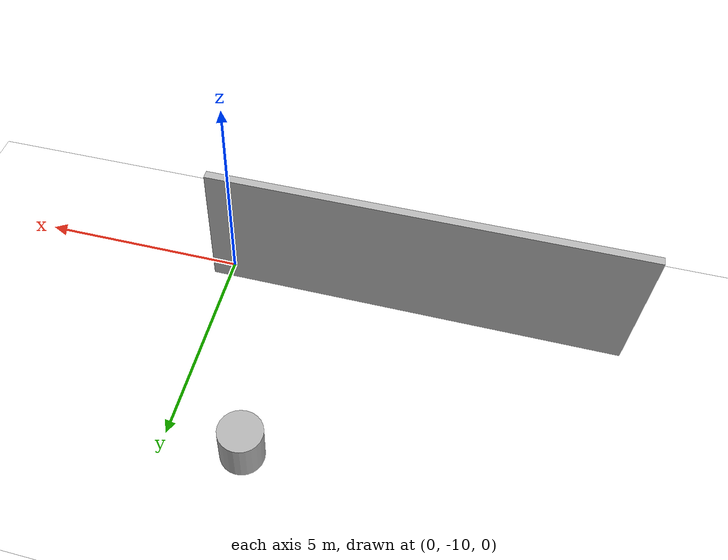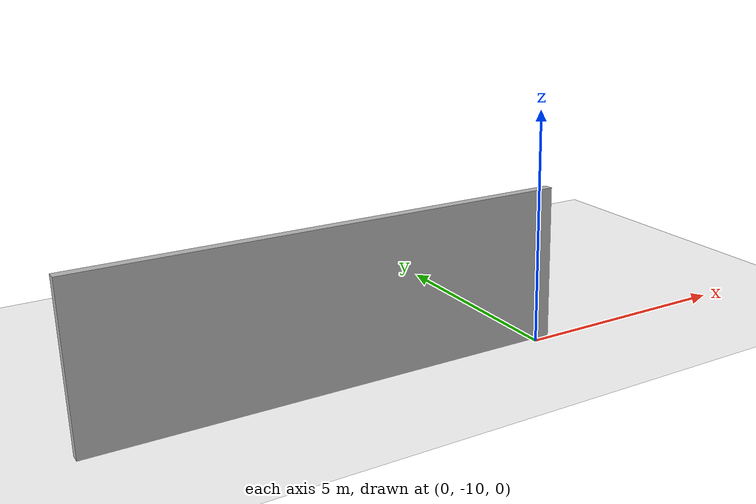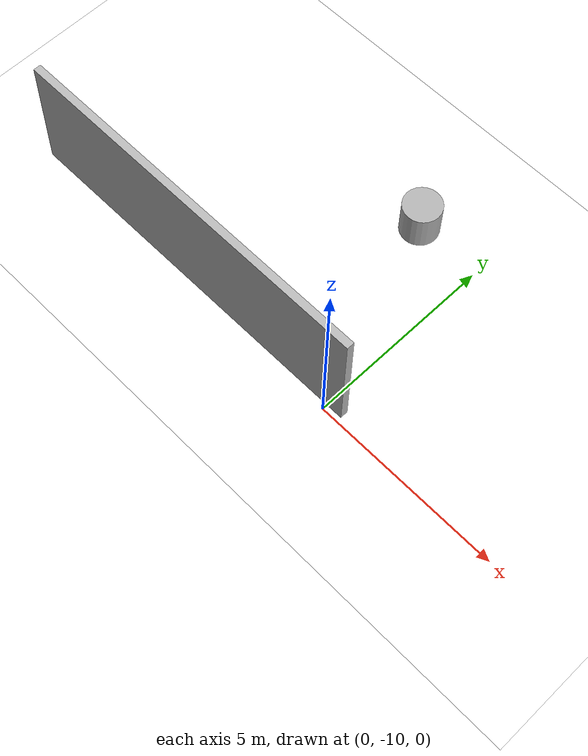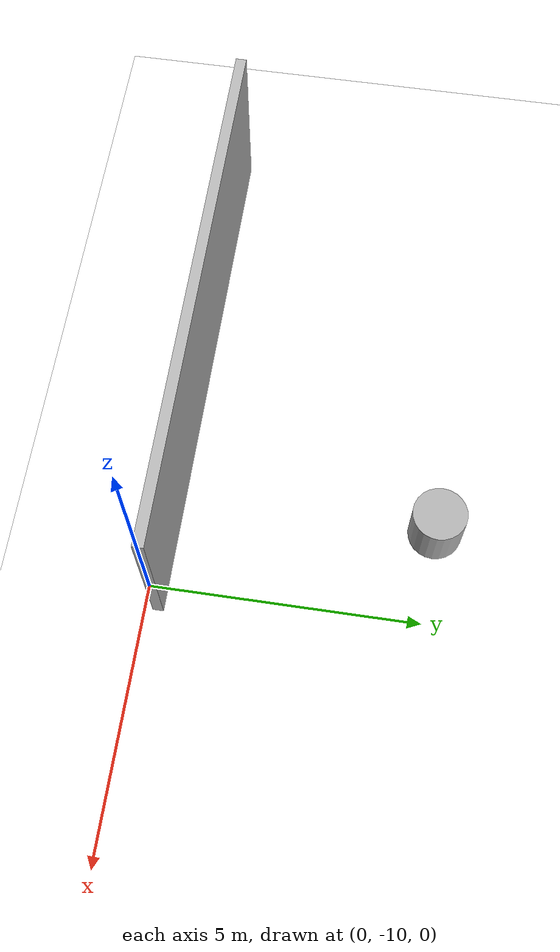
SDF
<sdf version="1.10">
 <world name="empty">
  <model name="ground_plane">
   <static>true</static>
   <link name="link">
    <collision name="collision">
     <geometry><plane><normal>0 0 1</normal><size>100 100</size></plane></geometry>
    </collision>
    <visual name="visual">
     <geometry><plane><normal>0 0 1</normal><size>20 20</size></plane></geometry>
     <material>
      <ambient>1 1 1 1</ambient>
      <diffuse>1 1 1 1</diffuse>
      <pbr>
       <metal>
        <albedo_map>file:///home/kiranchand/Downloads/project_2026/grass.jpg</albedo_map>
        <roughness>0.9</roughness>
        <metalness>0.0</metalness>
       </metal>
      </pbr>
     </material>
    </visual>
    <inertial>
     <mass>1</mass>
     <inertia><ixx>1</ixx><ixy>0</ixy><ixz>0</ixz><iyy>1</iyy><iyz>0</iyz><izz>1</izz></inertia>
    </inertial>
   </link>
  </model>
  <model name="cutout_wall_0">
   <static>true</static>
   <link name="link">
    <pose>0 0 1.3999999999999999 0 0 0</pose>
    <collision name="collision">
     <geometry><box><size>10 0.20000000000000001 3.7999999999999998</size></box></geometry>
     <surface>
      <contact>
       <collide_without_contact>true</collide_without_contact>
       <collide_without_contact_bitmask>2</collide_without_contact_bitmask>
      </contact>
     </surface>
    </collision>
    <visual name="visual">
     <cast_shadows>false</cast_shadows>
     <geometry><box><size>10 0.20000000000000001 3.7999999999999998</size></box></geometry>
     <material>
      <script>
       <uri>https://fuel.gazebosim.org/1.0/openrobotics/models/cutout wall/2/files/materials/scripts</uri>
       <uri>https://fuel.gazebosim.org/1.0/openrobotics/models/cutout wall/2/files/materials/textures</uri>
       <name>drc_practice/cutout_wall</name>
      </script>
     </material>
    </visual>
    <sensor name="mud_contact" type="contact">
     <always_on>true</always_on>
     <update_rate>1000</update_rate>
     <contact><collision>collision</collision><topic>__default_topic__</topic></contact>
    </sensor>
    <inertial>
     <mass>1</mass>
     <inertia><ixx>1</ixx><ixy>0</ixy><ixz>0</ixz><iyy>1</iyy><iyz>0</iyz><izz>1</izz></inertia>
    </inertial>
   </link>
   <plugin name="gazebo_mud" filename="libMudPlugin.so">
    <contact_sensor_name>link/mud_contact</contact_sensor_name>
    <stiffness>0.0</stiffness>
    <damping>40.0</damping>
    <contact_surface_bitmask>2</contact_surface_bitmask>
    <link_name>drill::link</link_name>
   </plugin>
   <pose>-4.5728732016919889 -9.7548819035040673 0 0 0 0</pose>
  </model>
  <model name="cylinder">
   <pose>-1.7852916997891786 -4.9330607397382948 0.49999943207967634 -1.8317796548835274e-19 1.8291930453031073e-19 3.7821432539631539e-20</pose>
   <link name="cylinder_link">
    <inertial>
     <inertia>
      <ixx>0.14580000000000001</ixx>
      <ixy>0</ixy>
      <ixz>0</ixz>
      <iyy>0.14580000000000001</iyy>
      <iyz>0</iyz>
      <izz>0.125</izz>
     </inertia>
     <mass>1</mass>
    </inertial>
    <collision name="cylinder_collision">
     <geometry><cylinder><radius>0.5</radius><length>1</length></cylinder></geometry>
    </collision>
    <visual name="cylinder_visual">
     <geometry><cylinder><radius>0.5</radius><length>1</length></cylinder></geometry>
     <material>
      <ambient>0.300000012 0.300000012 0.300000012 1</ambient>
      <diffuse>0.699999988 0.699999988 0.699999988 1</diffuse>
      <specular>1 1 1 1</specular>
     </material>
    </visual>
   </link>
   <static>false</static>
  </model>
 </world>
</sdf>
